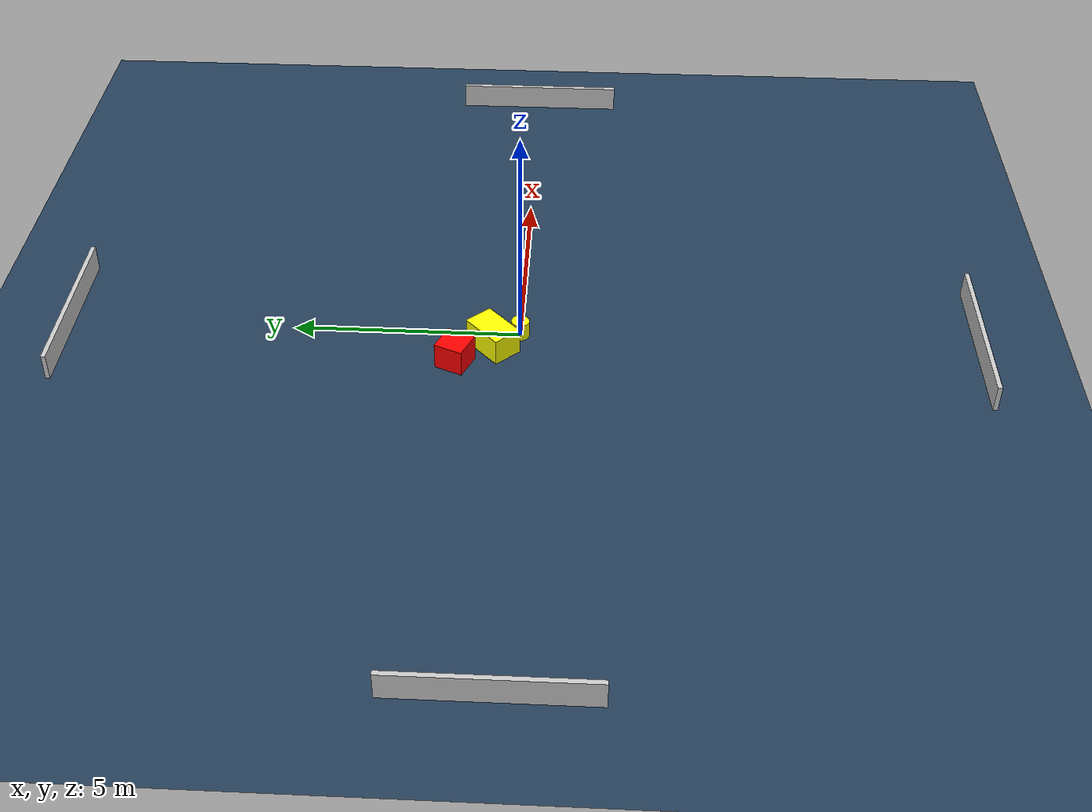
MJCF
<?xml version="1.0" ?>
<mujoco model="generated_environment">
  <option timestep="0.01" integrator="RK4" cone="elliptic"/>
  <default>
    <geom density="1"/>
  </default>
  <asset>
    <texture builtin="gradient" height="3072" name="skybox" rgb1="0.3 0.5 0.7" rgb2="0 0 0" type="skybox" width="512"/>
    <texture builtin="checker" height="300" name="groundplane" rgb1="0.2 0.3 0.4" rgb2="0.1 0.2 0.3" type="2d" width="300"/>
    <material name="groundplane" reflectance="0.2" texrepeat="5 5" texture="groundplane"/>
  </asset>
  <worldbody>
    <light dir="0 0 -1" directional="true" pos="0 0 1.5"/>
    <geom condim="3" friction="0.5 0.005 0.001" material="groundplane" name="floor" pos="0 0 0" size="0 0 0.05" type="plane"/>
    <body name="walls">
      <geom name="wall_1" condim="4" pos="-10.0 0.0 0.3" rgba="0.800000011920929 0.800000011920929 0.800000011920929 1.0" size="0.05 2.0 0.3" type="box"/>
      <geom name="wall_2" condim="4" pos="10.0 0.0 0.3" rgba="0.800000011920929 0.800000011920929 0.800000011920929 1.0" size="0.05 2.0 0.3" type="box"/>
      <geom name="wall_3" condim="4" pos="0.0 -10.0 0.3" rgba="0.800000011920929 0.800000011920929 0.800000011920929 1.0" size="2.0 0.05 0.3" type="box"/>
      <geom name="wall_4" condim="4" pos="0.0 10.0 0.3" rgba="0.800000011920929 0.800000011920929 0.800000011920929 1.0" size="2.0 0.05 0.3" type="box"/>
    </body>
    <body name="robot">
      <joint name="joint_x" type="slide" pos="0 0 0" axis="1 0 0"/>
      <joint name="joint_y" type="slide" pos="0 0 0" axis="0 1 0"/>
      <geom name="robot" type="cylinder" pos="0.0 0.0 0.2" size="0.2 0.2 0.0" mass="5.0" friction="1.0 0.005 0.0001" condim="4" rgba="1.0 1.0 0.0 1.0"/>
    </body>
    <body name="obstacle_1_movable">
      <geom name="obstacle_1_movable" condim="4" pos="-0.43567377550810193 0.5779685645363358 0.3" euler="0 0 222.971633530653" friction="0.0 0.005 0.001" rgba="1.0 1.0 0.0 1.0" size="0.5064752806952633 0.3333679895102989 0.3" type="box" mass="0.1"/>
      <joint type="free"/>
    </body>
    <body name="obstacle_2_static">
      <geom name="obstacle_2_static" condim="4" pos="-1.0209966267476058 1.360571325183302 0.3" euler="0 0 66.71153897941905" friction="0.0 0.005 0.001" rgba="1.0 0.0 0.0 1.0" size="0.3237965392806222 0.3217568154415124 0.3" type="box"/>
    </body>
  </worldbody>
  <actuator>
    <motor name="actuator_x" joint="joint_x" gear="1" ctrlrange="-1 1"/>
    <motor name="actuator_y" joint="joint_y" gear="1" ctrlrange="-1 1"/>
  </actuator>
</mujoco>
